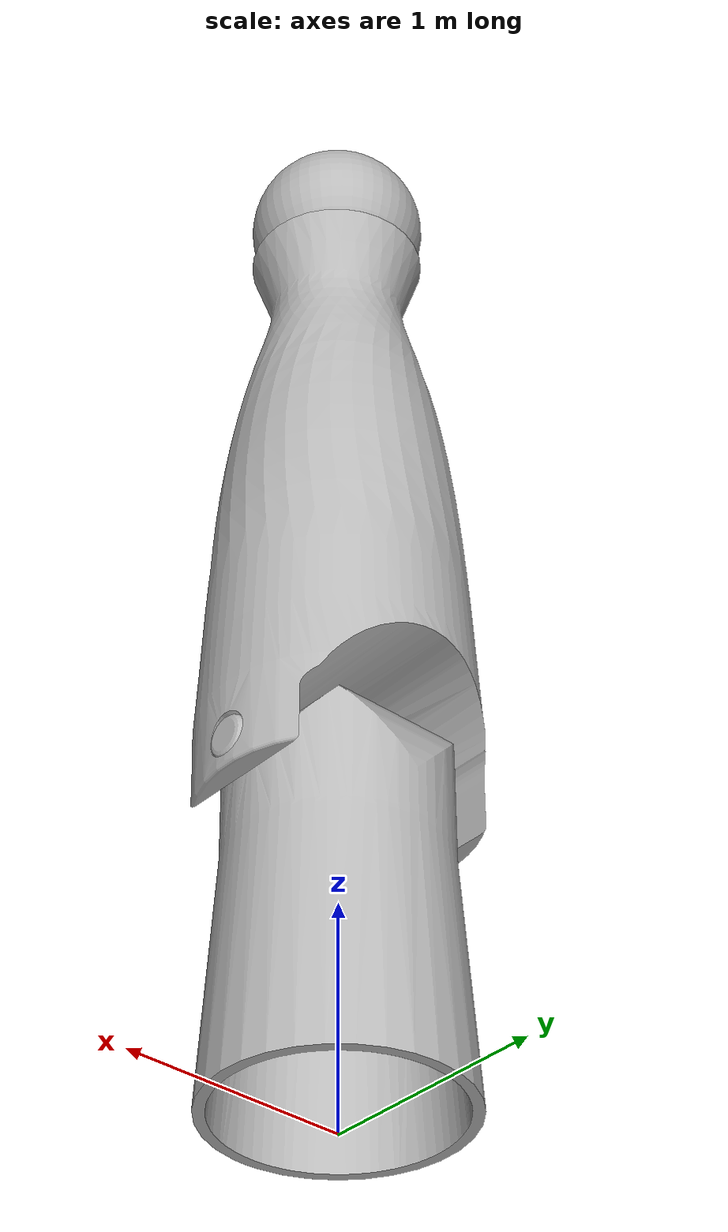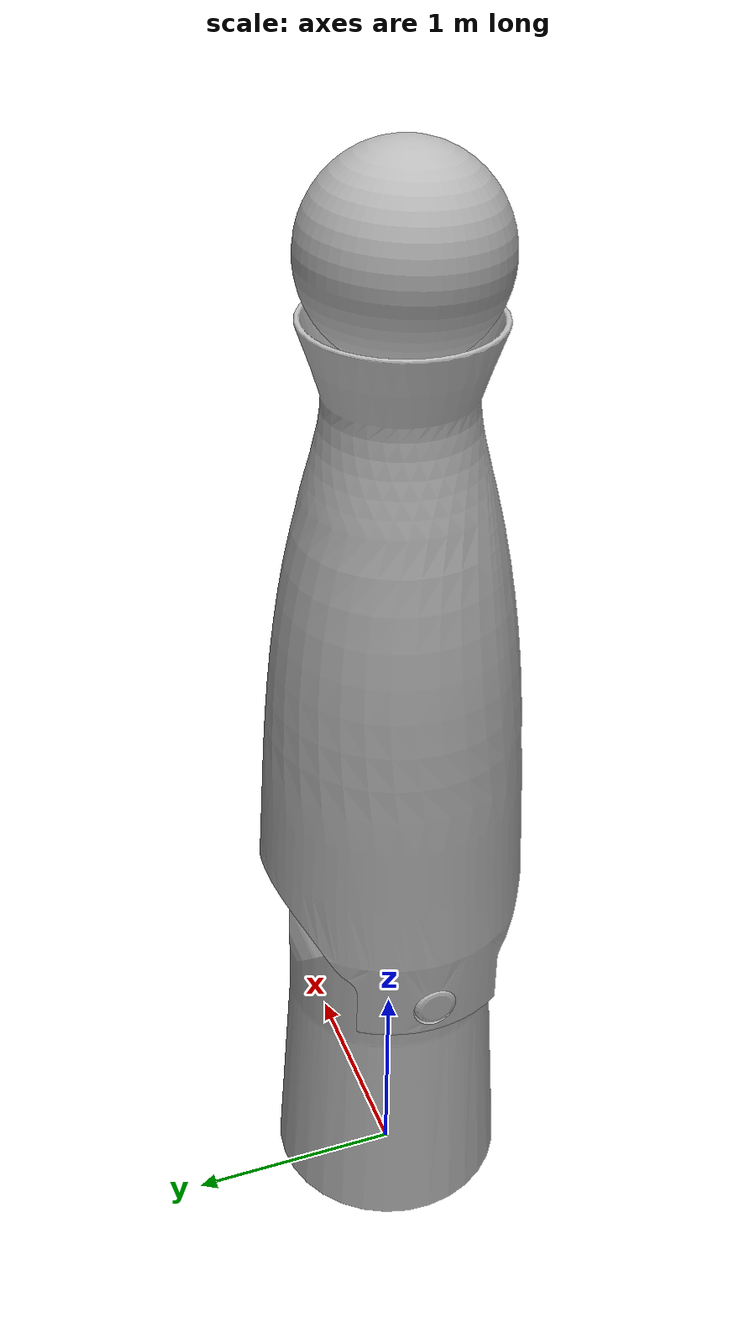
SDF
<?xml version='1.0'?>
<sdf version='1.5'>
  <model name="armsetup">
    <static>true</static>
          <link name='upper_arm_link'>
            <pose>0 0 1.2 0 0 0</pose>

            <collision name='collision'>
              <geometry>
                 <mesh>
                <scale>0.010 0.010 0.010</scale>
                <uri>model://armsetup/meshes/upperarm.stl</uri>
                </mesh>
              </geometry>
            </collision>

            <visual name='visual'>
              <geometry>
                <mesh>
                <scale>0.010 0.010 0.010</scale>
                <uri>model://armsetup/meshes/upperarm.stl</uri>
                </mesh>
              </geometry>
            </visual>
          </link>

                <link name='main_arm_link'>
            <pose>0 0 3.38 0 0 0</pose>

            <collision name='collision'>
              <geometry>
                <mesh>
                <scale>0.010 0.010 0.010</scale>
                <uri>model://armsetup/meshes/mainarm.stl</uri>
                </mesh>
              </geometry>
            </collision>

            <visual name='visual'>
              <geometry>
                <mesh>
                <scale>0.010 0.010 0.010</scale>
                <uri>model://armsetup/meshes/mainarm.stl</uri>
                </mesh>
              </geometry>
            </visual>
          </link>

                <link name='balloon_link'>
            <pose>0 0 4.7 0 0 0</pose>

            <collision name='collision'>
              <geometry>
                <mesh>
                <scale>0.010 0.010 0.010</scale>
                <uri>model://armsetup/meshes/balloon.stl</uri>
                </mesh>
              </geometry>
            </collision>

            <visual name='visual'>
              <geometry>
                <mesh>
                <scale>0.010 0.010 0.010</scale>
                <uri>model://armsetup/meshes/balloon.stl</uri>
                </mesh>
              </geometry>
            </visual>
          </link>

  </model>
</sdf>
